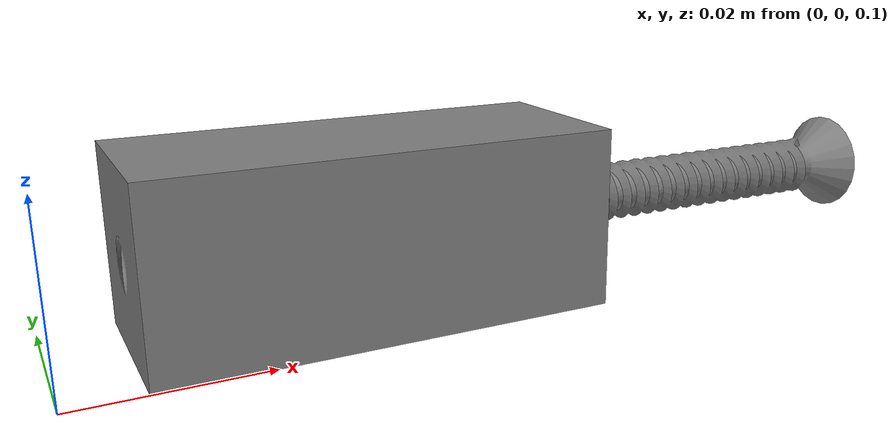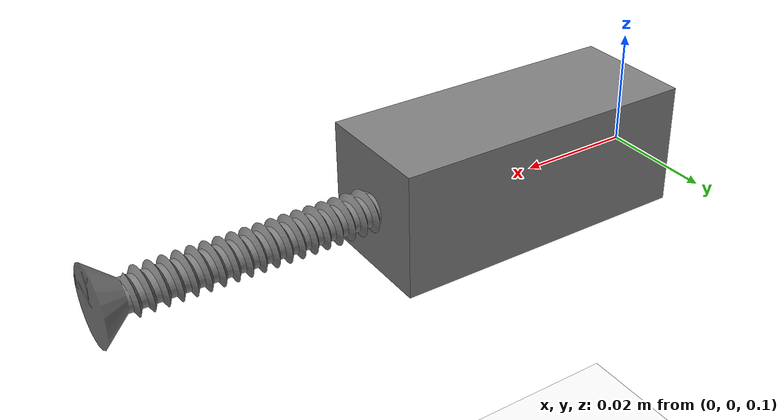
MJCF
<?xml version="1.0" encoding="utf-8"?>
<mujoco model="screw simulation">

    <compiler angle="degree"/>

    <asset>
        <mesh file="screw_link.STL" />
        <mesh file="threadedhole.STL" scale="0.001 0.001 0.001" />
    </asset>

    <worldbody>
        <camera axisangle="0 1 0 35" name="rgb" pos="0.13 0 0.24"></camera>
        <geom name="floor" pos="0 0 0" size="1 1 1" type="plane" rgba="0.99 0.99 0.99 1"/>

        <body pos="0.007 0 0.1" name="hole">
            <geom name="hole" type="mesh" mesh="threadedhole" pos="0 0 0" />
            <inertial pos="0 0 0" mass="1.00" diaginertia="1 1 1" />
        </body>

        <body pos="0.05 0.01 0.11" name="base">
            <inertial pos="0 0 0" mass="0.005" diaginertia="1 1 1"/>
            <joint axis="-1 0 0" name="screw_translation" pos="0 0 0" type="slide" />
            <body pos="0 0 0" name="screw">
                <geom name="screw" type="mesh" mesh="screw_link" pos="0 0 0" />
                <inertial pos="0 0 0" mass="0.005" diaginertia="1 1 1"/>
                <joint axis="1 0 0" name="screw_rotation" pos="0 0 0" type="hinge"/>
            </body>
        </body>

    </worldbody>

    <visual>
        <global offwidth="1280" offheight="720"/>
    </visual>

    <actuator>
        <motor name="screw_rot_motor" joint="screw_rotation" />
    </actuator>

</mujoco>
